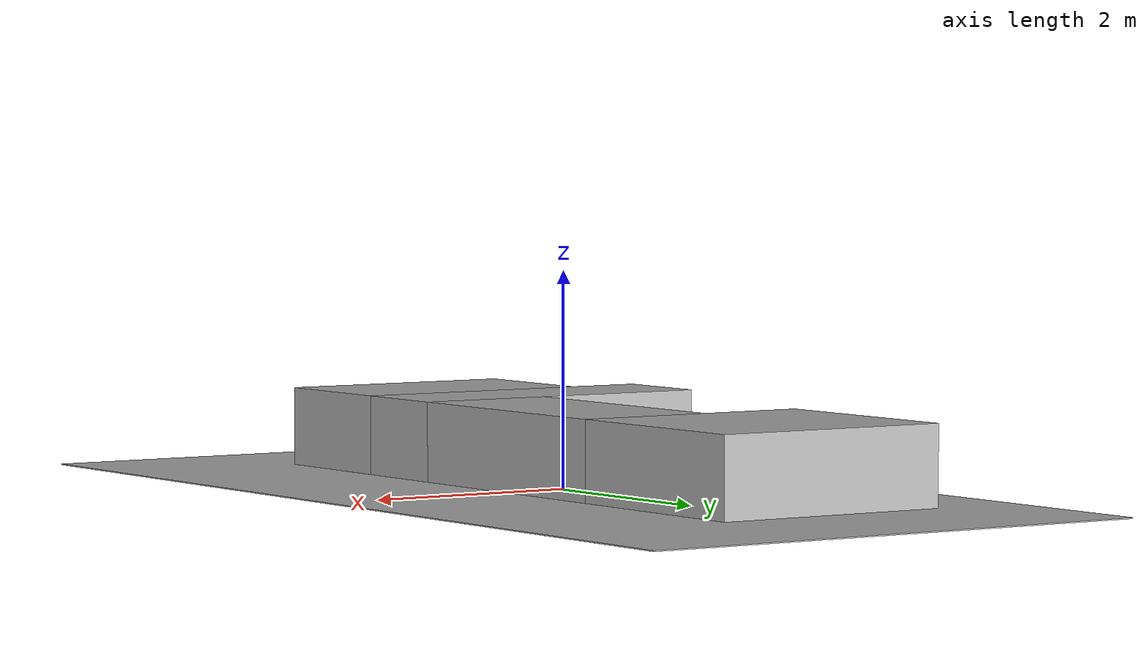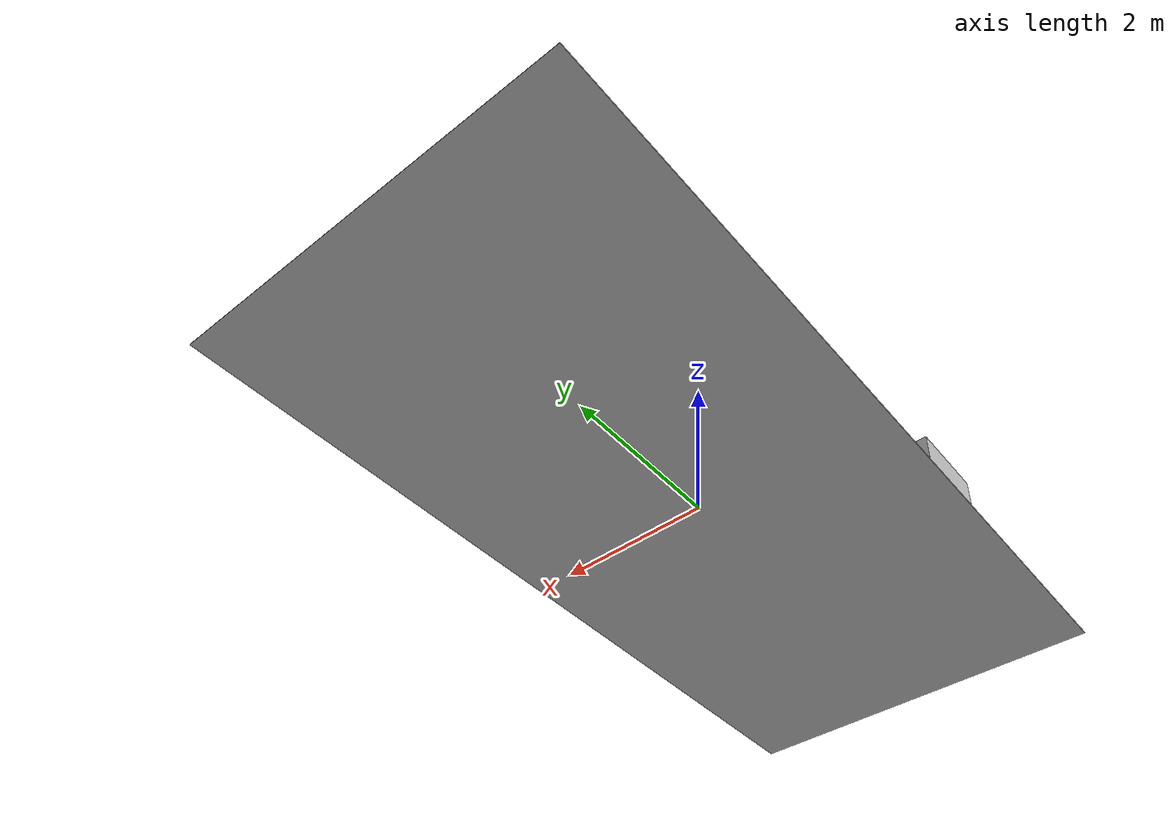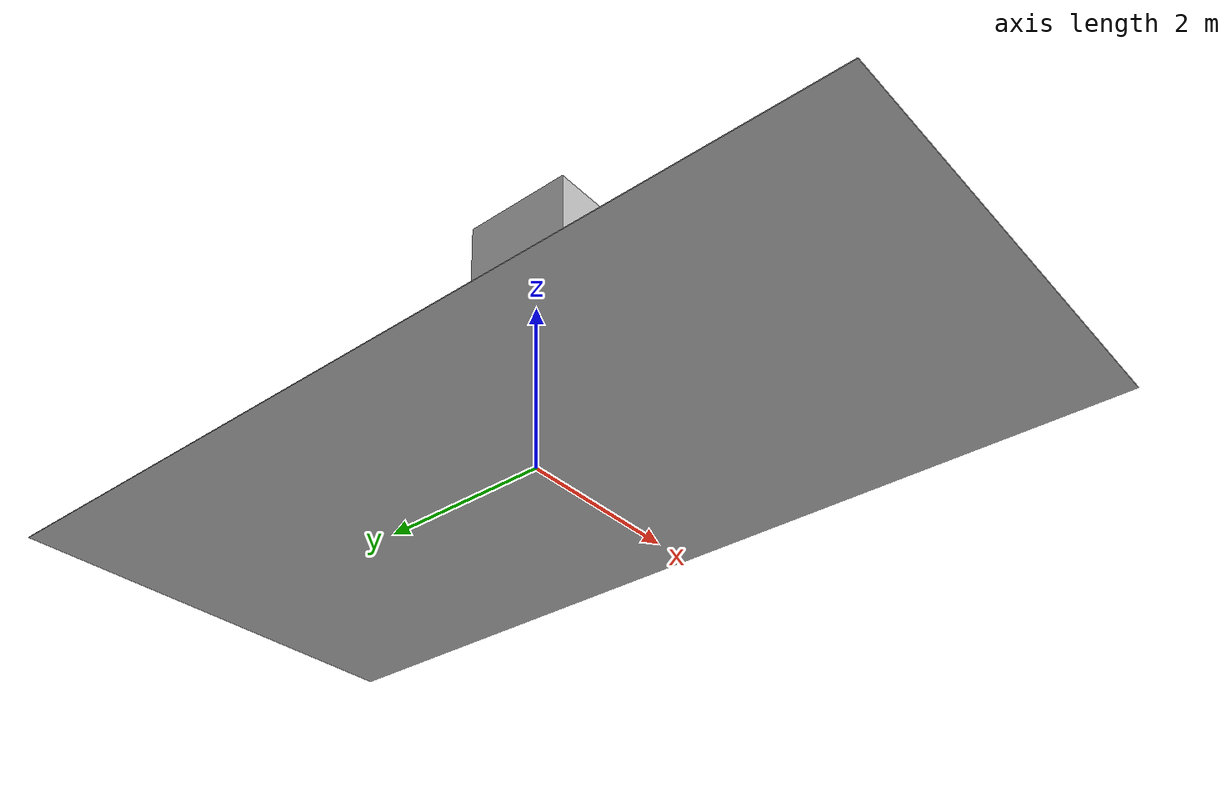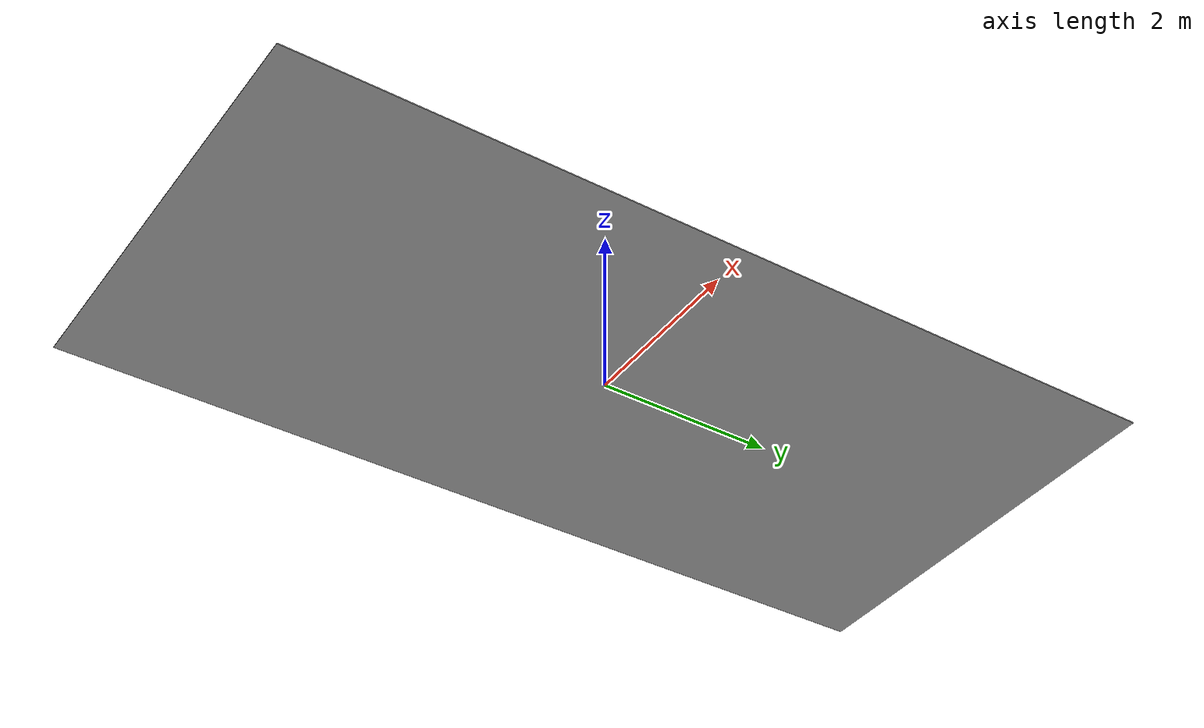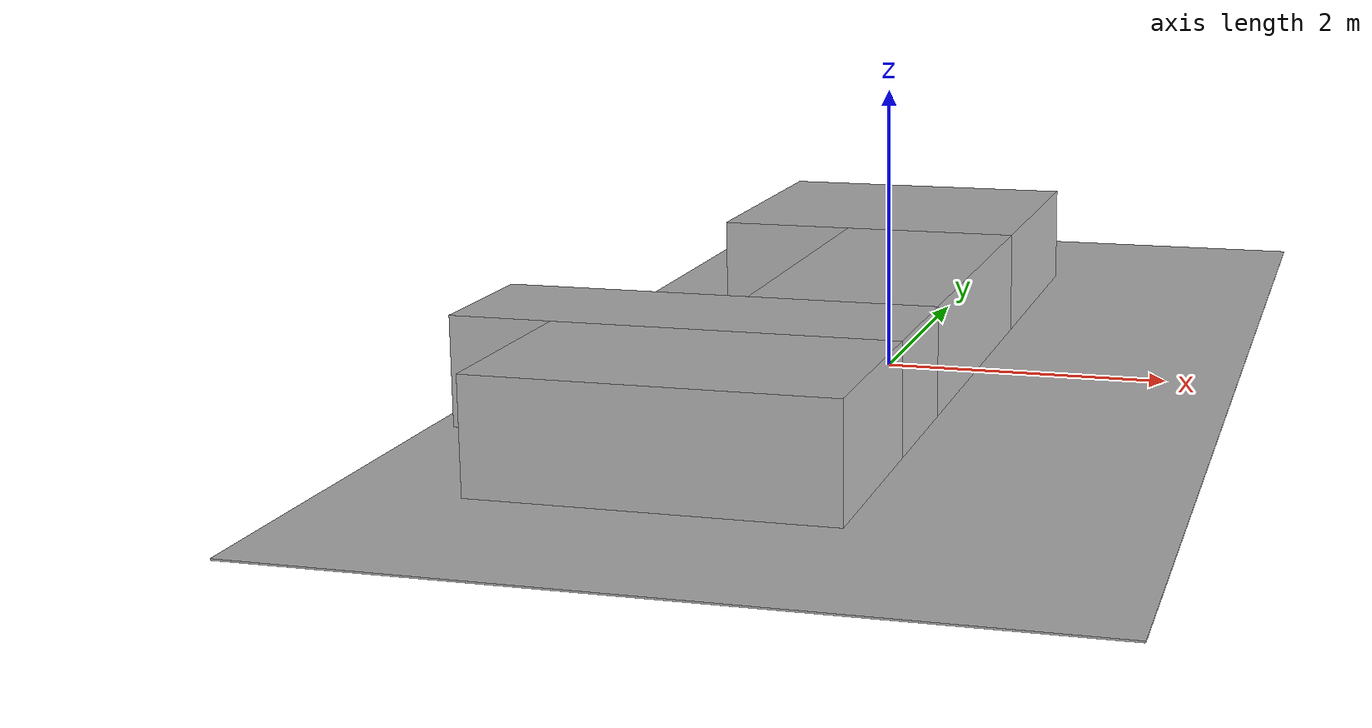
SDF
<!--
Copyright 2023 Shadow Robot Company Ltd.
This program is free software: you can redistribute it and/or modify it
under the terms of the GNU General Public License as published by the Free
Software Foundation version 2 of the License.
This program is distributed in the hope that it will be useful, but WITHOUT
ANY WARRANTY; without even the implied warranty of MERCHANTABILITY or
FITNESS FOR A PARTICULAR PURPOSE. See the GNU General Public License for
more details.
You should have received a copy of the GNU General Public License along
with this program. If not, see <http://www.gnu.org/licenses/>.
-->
<?xml version='1.0'?>

<sdf version="1.4">
<model name="filling_line_boxes">
    <static>true</static>

    <link name="ground">
      <collision name="ground_col">
      <pose>-1 -0.7 -0.005 0 0 0</pose>
        <geometry>
          <box>
            <size>5.0 10.0 0.01</size>
          </box>
        </geometry>
      </collision>
      <visual name="visual">
        <geometry>
          <box>
            <size>5.0 10.0 0.01</size>
          </box>
        </geometry>
      </visual>
    </link>

    <link name="filling_line_box">
      <collision name="filling_line_box_col">
        <pose>0.0 0.0 0.375 0 0 0 </pose>
        <geometry>
          <box>
            <size>1.3 2.6 0.75</size>
          </box>
        </geometry>
      </collision>
      <visual name="filling_line_box_vis">
        <pose>0.0 0.0 0.375 0 0 0 </pose>
        <geometry>
          <box>
            <size>1.3 2.6 0.75</size>
          </box>
        </geometry>
      </visual>
    </link>

    <link name="filling_line_box_1">
      <collision name="filling_line_box_1_col">
        <pose>-0.5 2.35 0.375 0 0 0 </pose>
        <geometry>
          <box>
            <size>2.3 2.1 0.75</size>
          </box>
        </geometry>
      </collision>
      <visual name="filling_line_box_1_vis">
        <pose>-0.5 2.35 0.375 0 0 0 </pose>
        <geometry>
          <box>
            <size>2.3 2.1 0.75</size>
          </box>
        </geometry>
      </visual>
    </link>

    <link name="filling_line_box_2">
      <collision name="filling_line_box_2_col">
        <pose>-0.85 -1.8 0.375 0 0 0 </pose>
        <geometry>
          <box>
            <size>3.0 1.0 0.75</size>
          </box>
        </geometry>
      </collision>
      <visual name="filling_line_box_2_vis">
        <pose>-0.85 -1.8 0.375 0 0 0 </pose>
        <geometry>
          <box>
            <size>3.0 1.0 0.75</size>
          </box>
        </geometry>
      </visual>
    </link>

<link name="filling_line_box_3">
      <collision name="filling_line_box_3_col">
        <pose>-0.5 -3.0 0.375 0 0 0 </pose>
        <geometry>
          <box>
            <size>2.3 1.4 0.75</size>
          </box>
        </geometry>
      </collision>
      <visual name="filling_line_box_3_vis">
        <pose>-0.5 -3.0 0.375 0 0 0 </pose>
        <geometry>
          <box>
            <size>2.3 1.4 0.75</size>
          </box>
        </geometry>
      </visual>
    </link>

</model>
</sdf>
